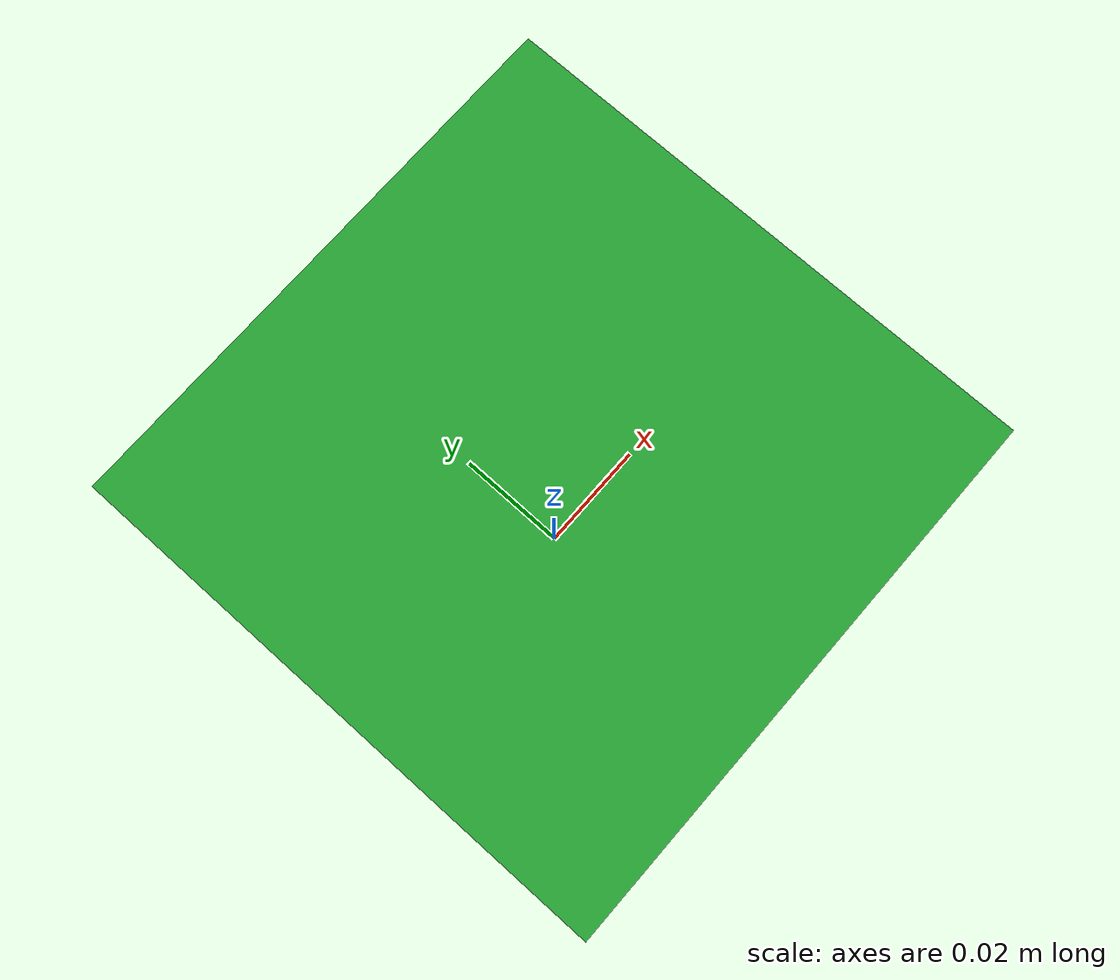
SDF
<?xml version='1.0'?>
<sdf version='1.6'>
  <model name='cube_20k_green'>
    <link name='link'>
      <pose frame=''>0 0 0 0 -0 0</pose>
      <inertial>
        <inertia>
          <ixx>1</ixx>
          <ixy>0</ixy>
          <ixz>0</ixz>
          <iyy>1</iyy>
          <iyz>0</iyz>
          <izz>1</izz>
        </inertia>
        <mass>1</mass>
        <pose frame=''>0 0 0 0 -0 0</pose>
      </inertial>
      <self_collide>0</self_collide>
      <kinematic>0</kinematic>
      <gravity>1</gravity>
      <visual name='visual'>
        <geometry>
          <box>
            <size>0.075 0.075 0.12</size>
          </box>
        </geometry>
        <pose frame=''>0 0 0 0 -0 0</pose>
        <cast_shadows>1</cast_shadows>
        <transparency>0</transparency>
        <material>
          <shader type='vertex'>
            <normal_map>__default__</normal_map>
          </shader>
          <ambient>0 0.3 0 1</ambient>
          <diffuse>0 0.3 0 1</diffuse>
          <specular>0.1 0.1 0.1 1</specular>
          <emissive>0 0 0 1</emissive>
          <script>
            <name>Gazebo/Green</name>
            <uri>__default__</uri>
          </script>
        </material>
      </visual>
      <collision name='collision'>
        <laser_retro>0</laser_retro>
        <max_contacts>10</max_contacts>
        <pose frame=''>0 0 0 0 -0 0</pose>
        <geometry>
          <box>
            <size>0.075 0.075 0.12</size>
          </box>
        </geometry>
        <surface>
          <friction>
            <ode>
              <mu>1</mu>
              <mu2>1</mu2>
              <fdir1>0 0 0</fdir1>
              <slip1>0</slip1>
              <slip2>0</slip2>
            </ode>
            <torsional>
              <coefficient>1</coefficient>
              <patch_radius>0</patch_radius>
              <surface_radius>0</surface_radius>
              <use_patch_radius>1</use_patch_radius>
              <ode>
                <slip>0</slip>
              </ode>
            </torsional>
          </friction>
          <bounce>
            <restitution_coefficient>0</restitution_coefficient>
            <threshold>1e+06</threshold>
          </bounce>
          <contact>
            <collide_without_contact>0</collide_without_contact>
            <collide_without_contact_bitmask>1</collide_without_contact_bitmask>
            <collide_bitmask>1</collide_bitmask>
            <ode>
              <soft_cfm>0</soft_cfm>
              <soft_erp>0.2</soft_erp>
              <kp>1e+13</kp>
              <kd>1</kd>
              <max_vel>0.01</max_vel>
              <min_depth>0</min_depth>
            </ode>
            <bullet>
              <split_impulse>1</split_impulse>
              <split_impulse_penetration_threshold>-0.01</split_impulse_penetration_threshold>
              <soft_cfm>0</soft_cfm>
              <soft_erp>0.2</soft_erp>
              <kp>1e+13</kp>
              <kd>1</kd>
            </bullet>
          </contact>
        </surface>
      </collision>
    </link>
    <static>0</static>
    <allow_auto_disable>1</allow_auto_disable>
  </model>
</sdf>
